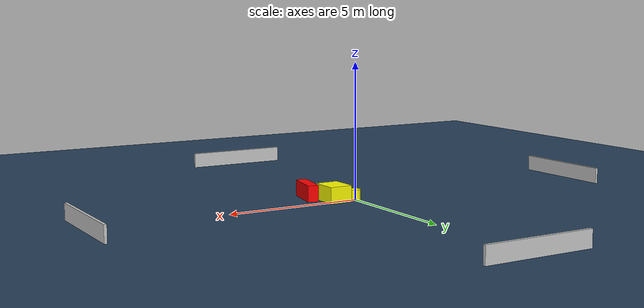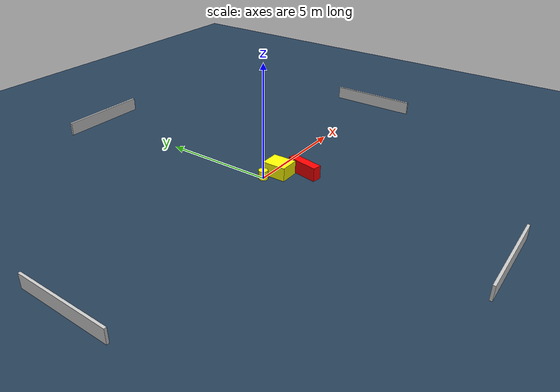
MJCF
<?xml version="1.0" ?>
<mujoco model="generated_environment">
  <option timestep="0.01" integrator="RK4" cone="elliptic"/>
  <default>
    <geom density="1"/>
  </default>
  <asset>
    <texture builtin="gradient" height="3072" name="skybox" rgb1="0.3 0.5 0.7" rgb2="0 0 0" type="skybox" width="512"/>
    <texture builtin="checker" height="300" name="groundplane" rgb1="0.2 0.3 0.4" rgb2="0.1 0.2 0.3" type="2d" width="300"/>
    <material name="groundplane" reflectance="0.2" texrepeat="5 5" texture="groundplane"/>
  </asset>
  <worldbody>
    <light dir="0 0 -1" directional="true" pos="0 0 1.5"/>
    <geom condim="3" friction="0.5 0.005 0.001" material="groundplane" name="floor" pos="0 0 0" size="0 0 0.05" type="plane"/>
    <body name="walls">
      <geom name="wall_1" condim="4" pos="-10.0 0.0 0.3" rgba="0.800000011920929 0.800000011920929 0.800000011920929 1.0" size="0.05 2.0 0.3" type="box"/>
      <geom name="wall_2" condim="4" pos="10.0 0.0 0.3" rgba="0.800000011920929 0.800000011920929 0.800000011920929 1.0" size="0.05 2.0 0.3" type="box"/>
      <geom name="wall_3" condim="4" pos="0.0 -10.0 0.3" rgba="0.800000011920929 0.800000011920929 0.800000011920929 1.0" size="2.0 0.05 0.3" type="box"/>
      <geom name="wall_4" condim="4" pos="0.0 10.0 0.3" rgba="0.800000011920929 0.800000011920929 0.800000011920929 1.0" size="2.0 0.05 0.3" type="box"/>
    </body>
    <body name="robot">
      <joint name="joint_x" type="slide" pos="0 0 0" axis="1 0 0"/>
      <joint name="joint_y" type="slide" pos="0 0 0" axis="0 1 0"/>
      <geom name="robot" type="cylinder" pos="0.0 0.0 0.2" size="0.2 0.2 0.0" mass="5.0" friction="1.0 0.005 0.0001" condim="4" rgba="1.0 1.0 0.0 1.0"/>
    </body>
    <body name="obstacle_1_movable">
      <geom name="obstacle_1_movable" condim="4" pos="0.7115001114702201 -0.31552288243363547 0.3" euler="0 0 270.41607449540527" friction="0.0 0.005 0.001" rgba="1.0 1.0 0.0 1.0" size="0.5286179839882228 0.4341280917069791 0.3" type="box" mass="0.1"/>
      <joint type="free"/>
    </body>
    <body name="obstacle_2_static">
      <geom name="obstacle_2_static" condim="4" pos="1.3459485190445994 -1.1674530035501725 0.3" euler="0 0 258.6578565532216" friction="0.0 0.005 0.001" rgba="1.0 0.0 0.0 1.0" size="0.723720651396494 0.2003095533724942 0.3" type="box"/>
    </body>
  </worldbody>
  <actuator>
    <motor name="actuator_x" joint="joint_x" gear="1" ctrlrange="-1 1"/>
    <motor name="actuator_y" joint="joint_y" gear="1" ctrlrange="-1 1"/>
  </actuator>
</mujoco>
